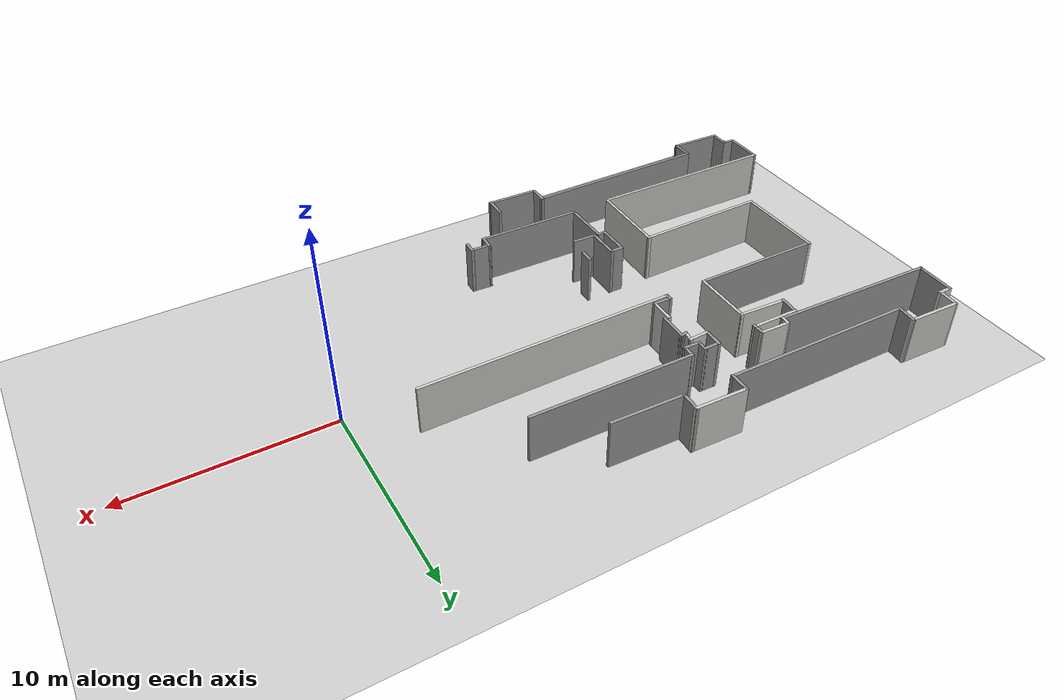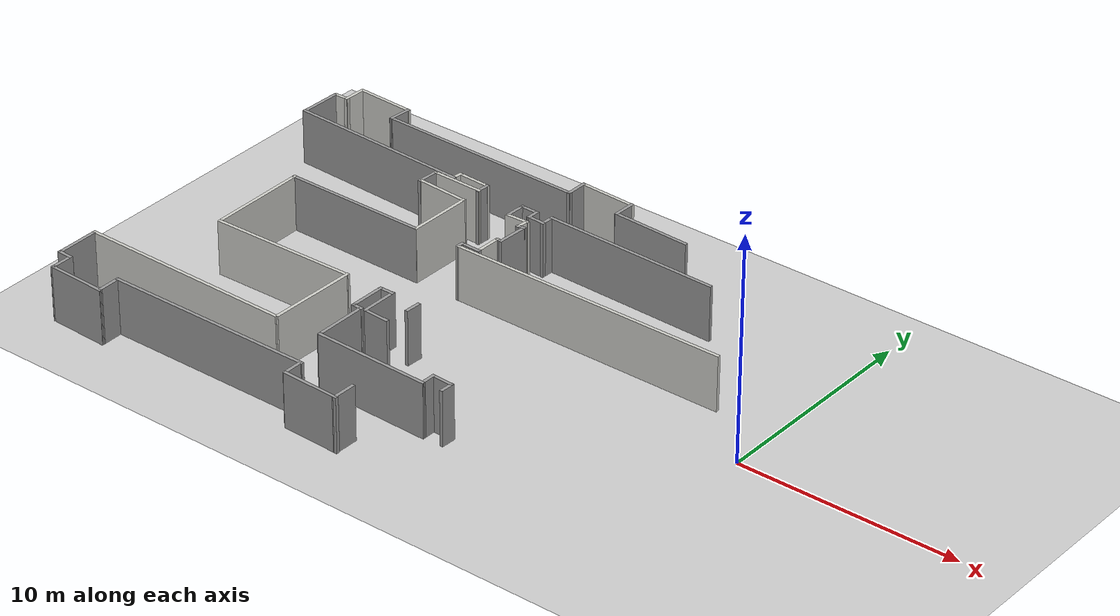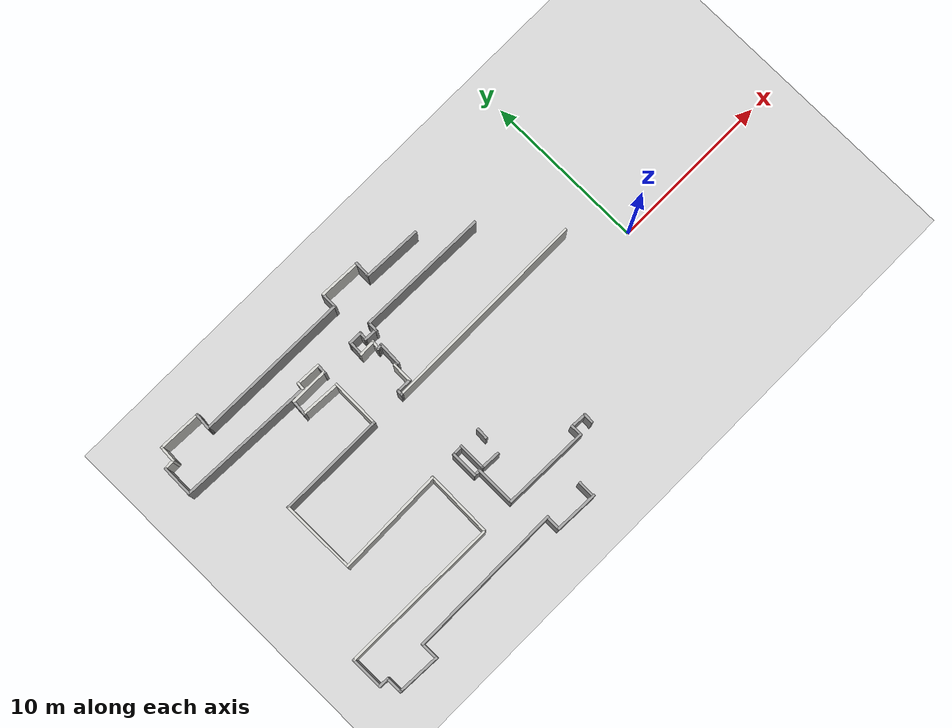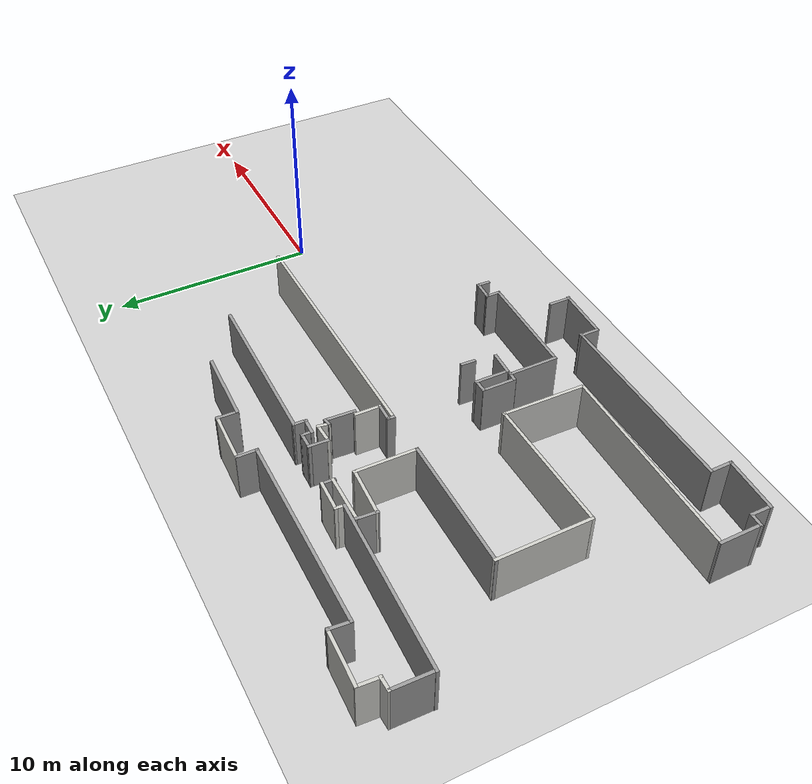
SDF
<sdf version="1.6">
 <world name="default">
  <model name="ground_plane">
   <static>1</static>
   <link name="link">
    <collision name="collision">
     <geometry><plane><normal>0 0 1</normal><size>100 100</size></plane></geometry>
     <surface><friction><ode><mu>100</mu><mu2>50</mu2></ode></friction></surface>
    </collision>
    <visual name="visual">
     <cast_shadows>0</cast_shadows>
     <geometry><plane><normal>0 0 1</normal><size>100 100</size></plane></geometry>
     <material>
      <script><uri>file://media/materials/scripts/gazebo.material</uri><name>Gazebo/Grey</name></script>
     </material>
    </visual>
   </link>
  </model>
  <model name="D1">
   <pose>0 0 0 0 0 -0.05</pose>
   <link name="Wall_10">
    <collision name="Wall_10_Collision">
     <geometry><box><size>4.63207 0.15 2.5</size></box></geometry>
     <pose>0 0 1.25 0 -0 0</pose>
    </collision>
    <visual name="Wall_10_Visual">
     <pose>0 0 1.25 0 -0 0</pose>
     <geometry><box><size>4.63207 0.15 2.5</size></box></geometry>
     <material>
      <script><uri>file://media/materials/scripts/gazebo.material</uri><name>Gazebo/CeilingTiled</name></script>
      <ambient>1 1 1 1</ambient>
     </material>
     <meta><layer>0</layer></meta>
    </visual>
    <pose>-24.0592 -1.13338 0 0 -0 1.62653</pose>
   </link>
   <link name="Wall_100">
    <collision name="Wall_100_Collision">
     <geometry><box><size>0.773484 0.15 2.5</size></box></geometry>
     <pose>0 0 1.25 0 -0 0</pose>
    </collision>
    <visual name="Wall_100_Visual">
     <pose>0 0 1.25 0 -0 0</pose>
     <geometry><box><size>0.773484 0.15 2.5</size></box></geometry>
     <material>
      <script><uri>file://media/materials/scripts/gazebo.material</uri><name>Gazebo/Grey</name></script>
      <ambient>1 1 1 1</ambient>
     </material>
     <meta><layer>0</layer></meta>
    </visual>
    <pose>-9.92754 -6.2916 0 0 -0 1.61902</pose>
   </link>
   <link name="Wall_101">
    <collision name="Wall_101_Collision">
     <geometry><box><size>1.06746 0.15 2.5</size></box></geometry>
     <pose>0 0 1.25 0 -0 0</pose>
    </collision>
    <visual name="Wall_101_Visual">
     <pose>0 0 1.25 0 -0 0</pose>
     <geometry><box><size>1.06746 0.15 2.5</size></box></geometry>
     <material>
      <script><uri>file://media/materials/scripts/gazebo.material</uri><name>Gazebo/Grey</name></script>
      <ambient>1 1 1 1</ambient>
     </material>
     <meta><layer>0</layer></meta>
    </visual>
    <pose>-9.47888 -5.97978 0 0 -0 0.000275</pose>
   </link>
   <link name="Wall_102">
    <collision name="Wall_102_Collision">
     <geometry><box><size>0.675474 0.15 2.5</size></box></geometry>
     <pose>0 0 1.25 0 -0 0</pose>
    </collision>
    <visual name="Wall_102_Visual">
     <pose>0 0 1.25 0 -0 0</pose>
     <geometry><box><size>0.675474 0.15 2.5</size></box></geometry>
     <material>
      <script><uri>file://media/materials/scripts/gazebo.material</uri><name>Gazebo/Grey</name></script>
      <ambient>1 1 1 1</ambient>
     </material>
     <meta><layer>0</layer></meta>
    </visual>
    <pose>-9.01233 -6.23741 0 0 0 -1.55994</pose>
   </link>
   <link name="Wall_11">
    <collision name="Wall_11_Collision">
     <geometry><box><size>6.62047 0.15 2.5</size></box></geometry>
     <pose>0 0 1.25 0 -0 0</pose>
    </collision>
    <visual name="Wall_11_Visual">
     <pose>0 0 1.25 0 -0 0</pose>
     <geometry><box><size>6.62047 0.15 2.5</size></box></geometry>
     <material>
      <script><uri>file://media/materials/scripts/gazebo.material</uri><name>Gazebo/Grey</name></script>
      <ambient>1 1 1 1</ambient>
     </material>
     <meta><layer>0</layer></meta>
    </visual>
    <pose>-20.9609 1.24512 0 0 -0 0.046255</pose>
   </link>
   <link name="Wall_111">
    <collision name="Wall_111_Collision">
     <geometry><box><size>1.25 0.15 2.5</size></box></geometry>
     <pose>0 0 1.25 0 -0 0</pose>
    </collision>
    <visual name="Wall_111_Visual">
     <pose>0 0 1.25 0 -0 0</pose>
     <geometry><box><size>1.25 0.15 2.5</size></box></geometry>
     <material>
      <script><uri>file://media/materials/scripts/gazebo.material</uri><name>Gazebo/Grey</name></script>
      <ambient>1 1 1 1</ambient>
     </material>
     <meta><layer>0</layer></meta>
    </visual>
    <pose>-14.4644 -4.34643 0 0 -0 3.14159</pose>
   </link>
   <link name="Wall_112">
    <collision name="Wall_112_Collision">
     <geometry><box><size>1.75537 0.15 2.5</size></box></geometry>
     <pose>0 0 1.25 0 -0 0</pose>
    </collision>
    <visual name="Wall_112_Visual">
     <pose>0 0 1.25 0 -0 0</pose>
     <geometry><box><size>1.75537 0.15 2.5</size></box></geometry>
     <material>
      <script><uri>file://media/materials/scripts/gazebo.material</uri><name>Gazebo/Grey</name></script>
      <ambient>1 1 1 1</ambient>
     </material>
     <meta><layer>0</layer></meta>
    </visual>
    <pose>-15.0589 -3.54472 0 0 -0 1.61397</pose>
   </link>
   <link name="Wall_113">
    <collision name="Wall_113_Collision">
     <geometry><box><size>0.708313 0.15 2.5</size></box></geometry>
     <pose>0 0 1.25 0 -0 0</pose>
    </collision>
    <visual name="Wall_113_Visual">
     <pose>0 0 1.25 0 -0 0</pose>
     <geometry><box><size>0.708313 0.15 2.5</size></box></geometry>
     <material>
      <script><uri>file://media/materials/scripts/gazebo.material</uri><name>Gazebo/Grey</name></script>
      <ambient>1 1 1 1</ambient>
     </material>
     <meta><layer>0</layer></meta>
    </visual>
    <pose>-15.3899 -2.77455 0 0 0 -3.09124</pose>
   </link>
   <link name="Wall_114">
    <collision name="Wall_114_Collision">
     <geometry><box><size>1.69753 0.15 2.5</size></box></geometry>
     <pose>0 0 1.25 0 -0 0</pose>
    </collision>
    <visual name="Wall_114_Visual">
     <pose>0 0 1.25 0 -0 0</pose>
     <geometry><box><size>1.69753 0.15 2.5</size></box></geometry>
     <material>
      <script><uri>file://media/materials/scripts/gazebo.material</uri><name>Gazebo/Grey</name></script>
      <ambient>1 1 1 1</ambient>
     </material>
     <meta><layer>0</layer></meta>
    </visual>
    <pose>-15.6542 -3.5792 0 0 0 -1.52945</pose>
   </link>
   <link name="Wall_115">
    <collision name="Wall_115_Collision">
     <geometry><box><size>0.518108 0.15 2.5</size></box></geometry>
     <pose>0 0 1.25 0 -0 0</pose>
    </collision>
    <visual name="Wall_115_Visual">
     <pose>0 0 1.25 0 -0 0</pose>
     <geometry><box><size>0.518108 0.15 2.5</size></box></geometry>
     <material>
      <script><uri>file://media/materials/scripts/gazebo.material</uri><name>Gazebo/Grey</name></script>
      <ambient>1 1 1 1</ambient>
     </material>
     <meta><layer>0</layer></meta>
    </visual>
    <pose>-15.4207 -4.36883 0 0 -0 0.005204</pose>
   </link>
   <link name="Wall_118">
    <collision name="Wall_118_Collision">
     <geometry><box><size>2.52729 0.15 2.5</size></box></geometry>
     <pose>0 0 1.25 0 -0 0</pose>
    </collision>
    <visual name="Wall_118_Visual">
     <pose>0 0 1.25 0 -0 0</pose>
     <geometry><box><size>2.52729 0.15 2.5</size></box></geometry>
     <material>
      <script><uri>file://media/materials/scripts/gazebo.material</uri><name>Gazebo/Grey</name></script>
      <ambient>1 1 1 1</ambient>
     </material>
     <meta><layer>0</layer></meta>
    </visual>
    <pose>-15.1971 -5.55554 0 0 -0 1.61876</pose>
   </link>
   <link name="Wall_137">
    <collision name="Wall_137_Collision">
     <geometry><box><size>12.87 0.15 2.5</size></box></geometry>
     <pose>0 0 1.25 0 -0 0</pose>
    </collision>
    <visual name="Wall_137_Visual">
     <pose>0 0 1.25 0 -0 0</pose>
     <geometry><box><size>12.87 0.15 2.5</size></box></geometry>
     <material>
      <script><uri>file://media/materials/scripts/gazebo.material</uri><name>Gazebo/CeilingTiled</name></script>
      <ambient>1 1 1 1</ambient>
     </material>
     <meta><layer>0</layer></meta>
    </visual>
    <pose>-9.2247 1.87902 0 0 -0 0.053496</pose>
   </link>
   <link name="Wall_14">
    <collision name="Wall_14_Collision">
     <geometry><box><size>3.04926 0.15 2.5</size></box></geometry>
     <pose>0 0 1.25 0 -0 0</pose>
    </collision>
    <visual name="Wall_14_Visual">
     <pose>0 0 1.25 0 -0 0</pose>
     <geometry><box><size>3.04926 0.15 2.5</size></box></geometry>
     <material>
      <script><uri>file://media/materials/scripts/gazebo.material</uri><name>Gazebo/CeilingTiled</name></script>
      <ambient>1 1 1 1</ambient>
     </material>
     <meta><layer>0</layer></meta>
    </visual>
    <pose>-17.7698 2.85215 0 0 -0 1.60483</pose>
   </link>
   <link name="Wall_145">
    <collision name="Wall_145_Collision">
     <geometry><box><size>8.13692 0.15 2.5</size></box></geometry>
     <pose>0 0 1.25 0 -0 0</pose>
    </collision>
    <visual name="Wall_145_Visual">
     <pose>0 0 1.25 0 -0 0</pose>
     <geometry><box><size>8.13692 0.15 2.5</size></box></geometry>
     <material>
      <script><uri>file://media/materials/scripts/gazebo.material</uri><name>Gazebo/Grey</name></script>
      <ambient>1 1 1 1</ambient>
     </material>
     <meta><layer>0</layer></meta>
    </visual>
    <pose>-10.26 5.74717 0 0 0 -3.11094</pose>
   </link>
   <link name="Wall_146">
    <collision name="Wall_146_Collision">
     <geometry><box><size>0.716164 0.15 2.5</size></box></geometry>
     <pose>0 0 1.25 0 -0 0</pose>
    </collision>
    <visual name="Wall_146_Visual">
     <pose>0 0 1.25 0 -0 0</pose>
     <geometry><box><size>0.716164 0.15 2.5</size></box></geometry>
     <material>
      <script><uri>file://media/materials/scripts/gazebo.material</uri><name>Gazebo/Grey</name></script>
      <ambient>1 1 1 1</ambient>
     </material>
     <meta><layer>0</layer></meta>
    </visual>
    <pose>-14.2516 5.35898 0 0 0 -1.5708</pose>
   </link>
   <link name="Wall_147">
    <collision name="Wall_147_Collision">
     <geometry><box><size>0.88887 0.15 2.5</size></box></geometry>
     <pose>0 0 1.25 0 -0 0</pose>
    </collision>
    <visual name="Wall_147_Visual">
     <pose>0 0 1.25 0 -0 0</pose>
     <geometry><box><size>0.88887 0.15 2.5</size></box></geometry>
     <material>
      <script><uri>file://media/materials/scripts/gazebo.material</uri><name>Gazebo/Grey</name></script>
      <ambient>1 1 1 1</ambient>
     </material>
     <meta><layer>0</layer></meta>
    </visual>
    <pose>-14.6208 5.08415 0 0 0 -3.14053</pose>
   </link>
   <link name="Wall_148">
    <collision name="Wall_148_Collision">
     <geometry><box><size>0.593599 0.15 2.5</size></box></geometry>
     <pose>0 0 1.25 0 -0 0</pose>
    </collision>
    <visual name="Wall_148_Visual">
     <pose>0 0 1.25 0 -0 0</pose>
     <geometry><box><size>0.593599 0.15 2.5</size></box></geometry>
     <material>
      <script><uri>file://media/materials/scripts/gazebo.material</uri><name>Gazebo/Grey</name></script>
      <ambient>1 1 1 1</ambient>
     </material>
     <meta><layer>0</layer></meta>
    </visual>
    <pose>-14.9794 5.30555 0 0 -0 1.60068</pose>
   </link>
   <link name="Wall_149">
    <collision name="Wall_149_Collision">
     <geometry><box><size>0.888146 0.15 2.5</size></box></geometry>
     <pose>0 0 1.25 0 -0 0</pose>
    </collision>
    <visual name="Wall_149_Visual">
     <pose>0 0 1.25 0 -0 0</pose>
     <geometry><box><size>0.888146 0.15 2.5</size></box></geometry>
     <material>
      <script><uri>file://media/materials/scripts/gazebo.material</uri><name>Gazebo/Grey</name></script>
      <ambient>1 1 1 1</ambient>
     </material>
     <meta><layer>0</layer></meta>
    </visual>
    <pose>-15.3634 5.51314 0 0 0 -3.10313</pose>
   </link>
   <link name="Wall_15">
    <collision name="Wall_15_Collision">
     <geometry><box><size>2.49997 0.15 2.5</size></box></geometry>
     <pose>0 0 1.25 0 -0 0</pose>
    </collision>
    <visual name="Wall_15_Visual">
     <pose>0 0 1.25 0 -0 0</pose>
     <geometry><box><size>2.49997 0.15 2.5</size></box></geometry>
     <material>
      <script><uri>file://media/materials/scripts/gazebo.material</uri><name>Gazebo/CeilingTiled</name></script>
      <ambient>1 1 1 1</ambient>
     </material>
     <meta><layer>0</layer></meta>
    </visual>
    <pose>-18.9941 4.29324 0 0 -0 3.13343</pose>
   </link>
   <link name="Wall_150">
    <collision name="Wall_150_Collision">
     <geometry><box><size>1.019 0.15 2.5</size></box></geometry>
     <pose>0 0 1.25 0 -0 0</pose>
    </collision>
    <visual name="Wall_150_Visual">
     <pose>0 0 1.25 0 -0 0</pose>
     <geometry><box><size>1.019 0.15 2.5</size></box></geometry>
     <material>
      <script><uri>file://media/materials/scripts/gazebo.material</uri><name>Gazebo/Grey</name></script>
      <ambient>1 1 1 1</ambient>
     </material>
     <meta><layer>0</layer></meta>
    </visual>
    <pose>-15.7201 5.0731 0 0 0 -1.56278</pose>
   </link>
   <link name="Wall_16">
    <collision name="Wall_16_Collision">
     <geometry><box><size>1.06835 0.15 2.5</size></box></geometry>
     <pose>0 0 1.25 0 -0 0</pose>
    </collision>
    <visual name="Wall_16_Visual">
     <pose>0 0 1.25 0 -0 0</pose>
     <geometry><box><size>1.06835 0.15 2.5</size></box></geometry>
     <material>
      <script><uri>file://media/materials/scripts/gazebo.material</uri><name>Gazebo/Grey</name></script>
      <ambient>1 1 1 1</ambient>
     </material>
     <meta><layer>0</layer></meta>
    </visual>
    <pose>-20.1576 4.73913 0 0 -0 1.54603</pose>
   </link>
   <link name="Wall_167">
    <collision name="Wall_167_Collision">
     <geometry><box><size>0.396734 0.15 2.5</size></box></geometry>
     <pose>0 0 1.25 0 -0 0</pose>
    </collision>
    <visual name="Wall_167_Visual">
     <pose>0 0 1.25 0 -0 0</pose>
     <geometry><box><size>0.396734 0.15 2.5</size></box></geometry>
     <material>
      <script><uri>file://media/materials/scripts/gazebo.material</uri><name>Gazebo/Grey</name></script>
      <ambient>1 1 1 1</ambient>
     </material>
     <meta><layer>0</layer></meta>
    </visual>
    <pose>-15.5847 1.66184 0 0 -0 1.59867</pose>
   </link>
   <link name="Wall_17">
    <collision name="Wall_17_Collision">
     <geometry><box><size>2.43359 0.15 2.5</size></box></geometry>
     <pose>0 0 1.25 0 -0 0</pose>
    </collision>
    <visual name="Wall_17_Visual">
     <pose>0 0 1.25 0 -0 0</pose>
     <geometry><box><size>2.43359 0.15 2.5</size></box></geometry>
     <material>
      <script><uri>file://media/materials/scripts/gazebo.material</uri><name>Gazebo/CeilingTiled</name></script>
      <ambient>1 1 1 1</ambient>
     </material>
     <meta><layer>0</layer></meta>
    </visual>
    <pose>-19.0053 5.22091 0 0 -0 0.039844</pose>
   </link>
   <link name="Wall_171">
    <collision name="Wall_171_Collision">
     <geometry><box><size>1.5 0.15 2.5</size></box></geometry>
     <pose>0 0 1.25 0 -0 0</pose>
    </collision>
    <visual name="Wall_171_Visual">
     <pose>0 0 1.25 0 -0 0</pose>
     <geometry><box><size>1.5 0.15 2.5</size></box></geometry>
     <material>
      <script><uri>file://media/materials/scripts/gazebo.material</uri><name>Gazebo/Grey</name></script>
      <ambient>1 1 1 1</ambient>
     </material>
     <meta><layer>0</layer></meta>
    </visual>
    <pose>-14.569 3.62064 0 0 -0 1.5708</pose>
   </link>
   <link name="Wall_172">
    <collision name="Wall_172_Collision">
     <geometry><box><size>0.407104 0.15 2.5</size></box></geometry>
     <pose>0 0 1.25 0 -0 0</pose>
    </collision>
    <visual name="Wall_172_Visual">
     <pose>0 0 1.25 0 -0 0</pose>
     <geometry><box><size>0.407104 0.15 2.5</size></box></geometry>
     <material>
      <script><uri>file://media/materials/scripts/gazebo.material</uri><name>Gazebo/Grey</name></script>
      <ambient>1 1 1 1</ambient>
     </material>
     <meta><layer>0</layer></meta>
    </visual>
    <pose>-14.7035 4.2696 0 0 0 -2.93763</pose>
   </link>
   <link name="Wall_173">
    <collision name="Wall_173_Collision">
     <geometry><box><size>0.633477 0.15 2.5</size></box></geometry>
     <pose>0 0 1.25 0 -0 0</pose>
    </collision>
    <visual name="Wall_173_Visual">
     <pose>0 0 1.25 0 -0 0</pose>
     <geometry><box><size>0.633477 0.15 2.5</size></box></geometry>
     <material>
      <script><uri>file://media/materials/scripts/gazebo.material</uri><name>Gazebo/CeilingTiled</name></script>
      <ambient>1 1 1 1</ambient>
     </material>
     <meta><layer>0</layer></meta>
    </visual>
    <pose>-14.8079 4.48341 0 0 -0 1.44569</pose>
   </link>
   <link name="Wall_174">
    <collision name="Wall_174_Collision">
     <geometry><box><size>1.09272 0.15 2.5</size></box></geometry>
     <pose>0 0 1.25 0 -0 0</pose>
    </collision>
    <visual name="Wall_174_Visual">
     <pose>0 0 1.25 0 -0 0</pose>
     <geometry><box><size>1.09272 0.15 2.5</size></box></geometry>
     <material>
      <script><uri>file://media/materials/scripts/gazebo.material</uri><name>Gazebo/CeilingTiled</name></script>
      <ambient>1 1 1 1</ambient>
     </material>
     <meta><layer>0</layer></meta>
    </visual>
    <pose>-15.2558 4.67228 0 0 0 -3.05166</pose>
   </link>
   <link name="Wall_176">
    <collision name="Wall_176_Collision">
     <geometry><box><size>0.990294 0.15 2.5</size></box></geometry>
     <pose>0 0 1.25 0 -0 0</pose>
    </collision>
    <visual name="Wall_176_Visual">
     <pose>0 0 1.25 0 -0 0</pose>
     <geometry><box><size>0.990294 0.15 2.5</size></box></geometry>
     <material>
      <script><uri>file://media/materials/scripts/gazebo.material</uri><name>Gazebo/Grey</name></script>
      <ambient>1 1 1 1</ambient>
     </material>
     <meta><layer>0</layer></meta>
    </visual>
    <pose>-15.1625 1.79655 0 0 -0 0.028127</pose>
   </link>
   <link name="Wall_177">
    <collision name="Wall_177_Collision">
     <geometry><box><size>1.29015 0.15 2.5</size></box></geometry>
     <pose>0 0 1.25 0 -0 0</pose>
    </collision>
    <visual name="Wall_177_Visual">
     <pose>0 0 1.25 0 -0 0</pose>
     <geometry><box><size>1.29015 0.15 2.5</size></box></geometry>
     <material>
      <script><uri>file://media/materials/scripts/gazebo.material</uri><name>Gazebo/CeilingTiled</name></script>
      <ambient>1 1 1 1</ambient>
     </material>
     <meta><layer>0</layer></meta>
    </visual>
    <pose>-14.7624 2.38964 0 0 -0 1.59573</pose>
   </link>
   <link name="Wall_178">
    <collision name="Wall_178_Collision">
     <geometry><box><size>0.25 0.15 2.5</size></box></geometry>
     <pose>0 0 1.25 0 -0 0</pose>
    </collision>
    <visual name="Wall_178_Visual">
     <pose>0 0 1.25 0 -0 0</pose>
     <geometry><box><size>0.25 0.15 2.5</size></box></geometry>
     <material>
      <script><uri>file://media/materials/scripts/gazebo.material</uri><name>Gazebo/Grey</name></script>
      <ambient>1 1 1 1</ambient>
     </material>
     <meta><layer>0</layer></meta>
    </visual>
    <pose>-14.7209 2.95385 0 0 -0 0</pose>
   </link>
   <link name="Wall_18">
    <collision name="Wall_18_Collision">
     <geometry><box><size>0.689846 0.15 2.5</size></box></geometry>
     <pose>0 0 1.25 0 -0 0</pose>
    </collision>
    <visual name="Wall_18_Visual">
     <pose>0 0 1.25 0 -0 0</pose>
     <geometry><box><size>0.689846 0.15 2.5</size></box></geometry>
     <material>
      <script><uri>file://media/materials/scripts/gazebo.material</uri><name>Gazebo/Grey</name></script>
      <ambient>1 1 1 1</ambient>
     </material>
     <meta><layer>0</layer></meta>
    </visual>
    <pose>-17.8684 5.49083 0 0 -0 1.58545</pose>
   </link>
   <link name="Wall_182">
    <collision name="Wall_182_Collision">
     <geometry><box><size>0.75 0.15 2.5</size></box></geometry>
     <pose>0 0 1.25 0 -0 0</pose>
    </collision>
    <visual name="Wall_182_Visual">
     <pose>0 0 1.25 0 -0 0</pose>
     <geometry><box><size>0.75 0.15 2.5</size></box></geometry>
     <material>
      <script><uri>file://media/materials/scripts/gazebo.material</uri><name>Gazebo/Grey</name></script>
      <ambient>1 1 1 1</ambient>
     </material>
     <meta><layer>0</layer></meta>
    </visual>
    <pose>-13.805 -2.98105 0 0 0 -1.5708</pose>
   </link>
   <link name="Wall_19">
    <collision name="Wall_19_Collision">
     <geometry><box><size>1.58891 0.15 2.5</size></box></geometry>
     <pose>0 0 1.25 0 -0 0</pose>
    </collision>
    <visual name="Wall_19_Visual">
     <pose>0 0 1.25 0 -0 0</pose>
     <geometry><box><size>1.58891 0.15 2.5</size></box></geometry>
     <material>
      <script><uri>file://media/materials/scripts/gazebo.material</uri><name>Gazebo/CeilingTiled</name></script>
      <ambient>1 1 1 1</ambient>
     </material>
     <meta><layer>0</layer></meta>
    </visual>
    <pose>-18.5868 5.75255 0 0 0 -3.1302</pose>
   </link>
   <link name="Wall_20">
    <collision name="Wall_20_Collision">
     <geometry><box><size>0.529205 0.15 2.5</size></box></geometry>
     <pose>0 0 1.25 0 -0 0</pose>
    </collision>
    <visual name="Wall_20_Visual">
     <pose>0 0 1.25 0 -0 0</pose>
     <geometry><box><size>0.529205 0.15 2.5</size></box></geometry>
     <material>
      <script><uri>file://media/materials/scripts/gazebo.material</uri><name>Gazebo/CeilingTiled</name></script>
      <ambient>1 1 1 1</ambient>
     </material>
     <meta><layer>0</layer></meta>
    </visual>
    <pose>-19.3118 5.55504 0 0 0 -1.62599</pose>
   </link>
   <link name="Wall_21">
    <collision name="Wall_21_Collision">
     <geometry><box><size>8.48136 0.15 2.5</size></box></geometry>
     <pose>0 0 1.25 0 -0 0</pose>
    </collision>
    <visual name="Wall_21_Visual">
     <pose>0 0 1.25 0 -0 0</pose>
     <geometry><box><size>8.48136 0.15 2.5</size></box></geometry>
     <material>
      <script><uri>file://media/materials/scripts/gazebo.material</uri><name>Gazebo/Grey</name></script>
      <ambient>1 1 1 1</ambient>
     </material>
     <meta><layer>0</layer></meta>
    </visual>
    <pose>-23.4777 5.30654 0 0 0 -3.12976</pose>
   </link>
   <link name="Wall_22">
    <collision name="Wall_22_Collision">
     <geometry><box><size>1.97887 0.15 2.5</size></box></geometry>
     <pose>0 0 1.25 0 -0 0</pose>
    </collision>
    <visual name="Wall_22_Visual">
     <pose>0 0 1.25 0 -0 0</pose>
     <geometry><box><size>1.97887 0.15 2.5</size></box></geometry>
     <material>
      <script><uri>file://media/materials/scripts/gazebo.material</uri><name>Gazebo/Grey</name></script>
      <ambient>1 1 1 1</ambient>
     </material>
     <meta><layer>0</layer></meta>
    </visual>
    <pose>-27.649 6.18655 0 0 -0 1.59383</pose>
   </link>
   <link name="Wall_23">
    <collision name="Wall_23_Collision">
     <geometry><box><size>0.757971 0.15 2.5</size></box></geometry>
     <pose>0 0 1.25 0 -0 0</pose>
    </collision>
    <visual name="Wall_23_Visual">
     <pose>0 0 1.25 0 -0 0</pose>
     <geometry><box><size>0.757971 0.15 2.5</size></box></geometry>
     <material>
      <script><uri>file://media/materials/scripts/gazebo.material</uri><name>Gazebo/CeilingTiled</name></script>
      <ambient>1 1 1 1</ambient>
     </material>
     <meta><layer>0</layer></meta>
    </visual>
    <pose>-27.3673 7.14287 0 0 -0 0.088965</pose>
   </link>
   <link name="Wall_24">
    <collision name="Wall_24_Collision">
     <geometry><box><size>1.11437 0.15 2.5</size></box></geometry>
     <pose>0 0 1.25 0 -0 0</pose>
    </collision>
    <visual name="Wall_24_Visual">
     <pose>0 0 1.25 0 -0 0</pose>
     <geometry><box><size>1.11437 0.15 2.5</size></box></geometry>
     <material>
      <script><uri>file://media/materials/scripts/gazebo.material</uri><name>Gazebo/CeilingTiled</name></script>
      <ambient>1 1 1 1</ambient>
     </material>
     <meta><layer>0</layer></meta>
    </visual>
    <pose>-27.0721 7.6367 0 0 -0 1.55511</pose>
   </link>
   <link name="Wall_25">
    <collision name="Wall_25_Collision">
     <geometry><box><size>2.72969 0.15 2.5</size></box></geometry>
     <pose>0 0 1.25 0 -0 0</pose>
    </collision>
    <visual name="Wall_25_Visual">
     <pose>0 0 1.25 0 -0 0</pose>
     <geometry><box><size>2.72969 0.15 2.5</size></box></geometry>
     <material>
      <script><uri>file://media/materials/scripts/gazebo.material</uri><name>Gazebo/CeilingTiled</name></script>
      <ambient>1 1 1 1</ambient>
     </material>
     <meta><layer>0</layer></meta>
    </visual>
    <pose>-25.7597 8.13377 0 0 -0 0.011725</pose>
   </link>
   <link name="Wall_26">
    <collision name="Wall_26_Collision">
     <geometry><box><size>1.077 0.15 2.5</size></box></geometry>
     <pose>0 0 1.25 0 -0 0</pose>
    </collision>
    <visual name="Wall_26_Visual">
     <pose>0 0 1.25 0 -0 0</pose>
     <geometry><box><size>1.077 0.15 2.5</size></box></geometry>
     <material>
      <script><uri>file://media/materials/scripts/gazebo.material</uri><name>Gazebo/Grey</name></script>
      <ambient>1 1 1 1</ambient>
     </material>
     <meta><layer>0</layer></meta>
    </visual>
    <pose>-24.5063 7.68569 0 0 0 -1.60627</pose>
   </link>
   <link name="Wall_27">
    <collision name="Wall_27_Collision">
     <geometry><box><size>9.63273 0.15 2.5</size></box></geometry>
     <pose>0 0 1.25 0 -0 0</pose>
    </collision>
    <visual name="Wall_27_Visual">
     <pose>0 0 1.25 0 -0 0</pose>
     <geometry><box><size>9.63273 0.15 2.5</size></box></geometry>
     <material>
      <script><uri>file://media/materials/scripts/gazebo.material</uri><name>Gazebo/Grey</name></script>
      <ambient>1 1 1 1</ambient>
     </material>
     <meta><layer>0</layer></meta>
    </visual>
    <pose>-19.7646 7.3964 0 0 -0 0.036688</pose>
   </link>
   <link name="Wall_28">
    <collision name="Wall_28_Collision">
     <geometry><box><size>1.06194 0.15 2.5</size></box></geometry>
     <pose>0 0 1.25 0 -0 0</pose>
    </collision>
    <visual name="Wall_28_Visual">
     <pose>0 0 1.25 0 -0 0</pose>
     <geometry><box><size>1.06194 0.15 2.5</size></box></geometry>
     <material>
      <script><uri>file://media/materials/scripts/gazebo.material</uri><name>Gazebo/Grey</name></script>
      <ambient>1 1 1 1</ambient>
     </material>
     <meta><layer>0</layer></meta>
    </visual>
    <pose>-15.0415 8.0109 0 0 -0 1.60397</pose>
   </link>
   <link name="Wall_29">
    <collision name="Wall_29_Collision">
     <geometry><box><size>2.65141 0.15 2.5</size></box></geometry>
     <pose>0 0 1.25 0 -0 0</pose>
    </collision>
    <visual name="Wall_29_Visual">
     <pose>0 0 1.25 0 -0 0</pose>
     <geometry><box><size>2.65141 0.15 2.5</size></box></geometry>
     <material>
      <script><uri>file://media/materials/scripts/gazebo.material</uri><name>Gazebo/CeilingTiled</name></script>
      <ambient>1 1 1 1</ambient>
     </material>
     <meta><layer>0</layer></meta>
    </visual>
    <pose>-13.7909 8.49687 0 0 -0 0.012092</pose>
   </link>
   <link name="Wall_3">
    <collision name="Wall_3_Collision">
     <geometry><box><size>2.04214 0.15 2.5</size></box></geometry>
     <pose>0 0 1.25 0 -0 0</pose>
    </collision>
    <visual name="Wall_3_Visual">
     <pose>0 0 1.25 0 -0 0</pose>
     <geometry><box><size>2.04214 0.15 2.5</size></box></geometry>
     <material>
      <script><uri>file://media/materials/scripts/gazebo.material</uri><name>Gazebo/Grey</name></script>
      <ambient>1 1 1 1</ambient>
     </material>
     <meta><layer>0</layer></meta>
    </visual>
    <pose>-26.9709 -8.25827 0 0 -0 1.62308</pose>
   </link>
   <link name="Wall_30">
    <collision name="Wall_30_Collision">
     <geometry><box><size>1.05353 0.15 2.5</size></box></geometry>
     <pose>0 0 1.25 0 -0 0</pose>
    </collision>
    <visual name="Wall_30_Visual">
     <pose>0 0 1.25 0 -0 0</pose>
     <geometry><box><size>1.05353 0.15 2.5</size></box></geometry>
     <material>
      <script><uri>file://media/materials/scripts/gazebo.material</uri><name>Gazebo/Grey</name></script>
      <ambient>1 1 1 1</ambient>
     </material>
     <meta><layer>0</layer></meta>
    </visual>
    <pose>-12.5479 8.07541 0 0 0 -1.55406</pose>
   </link>
   <link name="Wall_31">
    <collision name="Wall_31_Collision">
     <geometry><box><size>3.63693 0.15 2.5</size></box></geometry>
     <pose>0 0 1.25 0 -0 0</pose>
    </collision>
    <visual name="Wall_31_Visual">
     <pose>0 0 1.25 0 -0 0</pose>
     <geometry><box><size>3.63693 0.15 2.5</size></box></geometry>
     <material>
      <script><uri>file://media/materials/scripts/gazebo.material</uri><name>Gazebo/Grey</name></script>
      <ambient>1 1 1 1</ambient>
     </material>
     <meta><layer>0</layer></meta>
    </visual>
    <pose>-10.767 7.63127 0 0 -0 0.013013</pose>
   </link>
   <link name="Wall_5">
    <collision name="Wall_5_Collision">
     <geometry><box><size>9.82765 0.15 2.5</size></box></geometry>
     <pose>0 0 1.25 0 -0 0</pose>
    </collision>
    <visual name="Wall_5_Visual">
     <pose>0 0 1.25 0 -0 0</pose>
     <geometry><box><size>9.82765 0.15 2.5</size></box></geometry>
     <material>
      <script><uri>file://media/materials/scripts/gazebo.material</uri><name>Gazebo/CeilingTiled</name></script>
      <ambient>1 1 1 1</ambient>
     </material>
     <meta><layer>0</layer></meta>
    </visual>
    <pose>-22.165 -7.13586 0 0 -0 0.036719</pose>
   </link>
   <link name="Wall_7">
    <collision name="Wall_7_Collision">
     <geometry><box><size>4.10751 0.15 2.5</size></box></geometry>
     <pose>0 0 1.25 0 -0 0</pose>
    </collision>
    <visual name="Wall_7_Visual">
     <pose>0 0 1.25 0 -0 0</pose>
     <geometry><box><size>4.10751 0.15 2.5</size></box></geometry>
     <material>
      <script><uri>file://media/materials/scripts/gazebo.material</uri><name>Gazebo/CeilingTiled</name></script>
      <ambient>1 1 1 1</ambient>
     </material>
     <meta><layer>0</layer></meta>
    </visual>
    <pose>-17.3068 -4.90074 0 0 -0 1.59959</pose>
   </link>
   <link name="Wall_9">
    <collision name="Wall_9_Collision">
     <geometry><box><size>6.7358 0.15 2.5</size></box></geometry>
     <pose>0 0 1.25 0 -0 0</pose>
    </collision>
    <visual name="Wall_9_Visual">
     <pose>0 0 1.25 0 -0 0</pose>
     <geometry><box><size>6.7358 0.15 2.5</size></box></geometry>
     <material>
      <script><uri>file://media/materials/scripts/gazebo.material</uri><name>Gazebo/CeilingTiled</name></script>
      <ambient>1 1 1 1</ambient>
     </material>
     <meta><layer>0</layer></meta>
    </visual>
    <pose>-20.6491 -3.1671 0 0 0 -3.07349</pose>
   </link>
   <link name="Wall_90">
    <collision name="Wall_90_Collision">
     <geometry><box><size>1.13602 0.15 2.5</size></box></geometry>
     <pose>0 0 1.25 0 -0 0</pose>
    </collision>
    <visual name="Wall_90_Visual">
     <pose>0 0 1.25 0 -0 0</pose>
     <geometry><box><size>1.13602 0.15 2.5</size></box></geometry>
     <material>
      <script><uri>file://media/materials/scripts/gazebo.material</uri><name>Gazebo/Grey</name></script>
      <ambient>1 1 1 1</ambient>
     </material>
     <meta><layer>0</layer></meta>
    </visual>
    <pose>-11.7048 -9.01116 0 0 0 -1.53828</pose>
   </link>
   <link name="Wall_91">
    <collision name="Wall_91_Collision">
     <geometry><box><size>2.70269 0.15 2.5</size></box></geometry>
     <pose>0 0 1.25 0 -0 0</pose>
    </collision>
    <visual name="Wall_91_Visual">
     <pose>0 0 1.25 0 -0 0</pose>
     <geometry><box><size>2.70269 0.15 2.5</size></box></geometry>
     <material>
      <script><uri>file://media/materials/scripts/gazebo.material</uri><name>Gazebo/Grey</name></script>
      <ambient>1 1 1 1</ambient>
     </material>
     <meta><layer>0</layer></meta>
    </visual>
    <pose>-12.9302 -9.52214 0 0 0 -3.12731</pose>
   </link>
   <link name="Wall_92">
    <collision name="Wall_92_Collision">
     <geometry><box><size>0.998874 0.15 2.5</size></box></geometry>
     <pose>0 0 1.25 0 -0 0</pose>
    </collision>
    <visual name="Wall_92_Visual">
     <pose>0 0 1.25 0 -0 0</pose>
     <geometry><box><size>0.998874 0.15 2.5</size></box></geometry>
     <material>
      <script><uri>file://media/materials/scripts/gazebo.material</uri><name>Gazebo/Grey</name></script>
      <ambient>1 1 1 1</ambient>
     </material>
     <meta><layer>0</layer></meta>
    </visual>
    <pose>-14.2597 -9.09893 0 0 -0 1.61425</pose>
   </link>
   <link name="Wall_93">
    <collision name="Wall_93_Collision">
     <geometry><box><size>9.66714 0.15 2.5</size></box></geometry>
     <pose>0 0 1.25 0 -0 0</pose>
    </collision>
    <visual name="Wall_93_Visual">
     <pose>0 0 1.25 0 -0 0</pose>
     <geometry><box><size>9.66714 0.15 2.5</size></box></geometry>
     <material>
      <script><uri>file://media/materials/scripts/gazebo.material</uri><name>Gazebo/Grey</name></script>
      <ambient>1 1 1 1</ambient>
     </material>
     <meta><layer>0</layer></meta>
    </visual>
    <pose>-18.9956 -8.91883 0 0 0 -3.09031</pose>
   </link>
   <link name="Wall_94">
    <collision name="Wall_94_Collision">
     <geometry><box><size>1.15546 0.15 2.5</size></box></geometry>
     <pose>0 0 1.25 0 -0 0</pose>
    </collision>
    <visual name="Wall_94_Visual">
     <pose>0 0 1.25 0 -0 0</pose>
     <geometry><box><size>1.15546 0.15 2.5</size></box></geometry>
     <material>
      <script><uri>file://media/materials/scripts/gazebo.material</uri><name>Gazebo/Grey</name></script>
      <ambient>1 1 1 1</ambient>
     </material>
     <meta><layer>0</layer></meta>
    </visual>
    <pose>-23.7354 -9.68199 0 0 0 -1.5112</pose>
   </link>
   <link name="Wall_95">
    <collision name="Wall_95_Collision">
     <geometry><box><size>2.75992 0.15 2.5</size></box></geometry>
     <pose>0 0 1.25 0 -0 0</pose>
    </collision>
    <visual name="Wall_95_Visual">
     <pose>0 0 1.25 0 -0 0</pose>
     <geometry><box><size>2.75992 0.15 2.5</size></box></geometry>
     <material>
      <script><uri>file://media/materials/scripts/gazebo.material</uri><name>Gazebo/Grey</name></script>
      <ambient>1 1 1 1</ambient>
     </material>
     <meta><layer>0</layer></meta>
    </visual>
    <pose>-25.0101 -10.2033 0 0 0 -3.13432</pose>
   </link>
   <link name="Wall_96">
    <collision name="Wall_96_Collision">
     <geometry><box><size>1.08688 0.15 2.5</size></box></geometry>
     <pose>0 0 1.25 0 -0 0</pose>
    </collision>
    <visual name="Wall_96_Visual">
     <pose>0 0 1.25 0 -0 0</pose>
     <geometry><box><size>1.08688 0.15 2.5</size></box></geometry>
     <material>
      <script><uri>file://media/materials/scripts/gazebo.material</uri><name>Gazebo/Grey</name></script>
      <ambient>1 1 1 1</ambient>
     </material>
     <meta><layer>0</layer></meta>
    </visual>
    <pose>-26.3251 -9.74443 0 0 -0 1.6142</pose>
   </link>
   <link name="Wall_97">
    <collision name="Wall_97_Collision">
     <geometry><box><size>0.720396 0.15 2.5</size></box></geometry>
     <pose>0 0 1.25 0 -0 0</pose>
    </collision>
    <visual name="Wall_97_Visual">
     <pose>0 0 1.25 0 -0 0</pose>
     <geometry><box><size>0.720396 0.15 2.5</size></box></geometry>
     <material>
      <script><uri>file://media/materials/scripts/gazebo.material</uri><name>Gazebo/Grey</name></script>
      <ambient>1 1 1 1</ambient>
     </material>
     <meta><layer>0</layer></meta>
    </visual>
    <pose>-26.6406 -9.26605 0 0 -0 3.1412</pose>
   </link>
   <link name="Wall_99">
    <collision name="Wall_99_Collision">
     <geometry><box><size>5.36183 0.15 2.5</size></box></geometry>
     <pose>0 0 1.25 0 -0 0</pose>
    </collision>
    <visual name="Wall_99_Visual">
     <pose>0 0 1.25 0 -0 0</pose>
     <geometry><box><size>5.36183 0.15 2.5</size></box></geometry>
     <material>
      <script><uri>file://media/materials/scripts/gazebo.material</uri><name>Gazebo/Grey</name></script>
      <ambient>1 1 1 1</ambient>
     </material>
     <meta><layer>0</layer></meta>
    </visual>
    <pose>-12.5175 -6.67573 0 0 -0 0.025896</pose>
   </link>
   <static>1</static>
  </model>
 </world>
</sdf>
